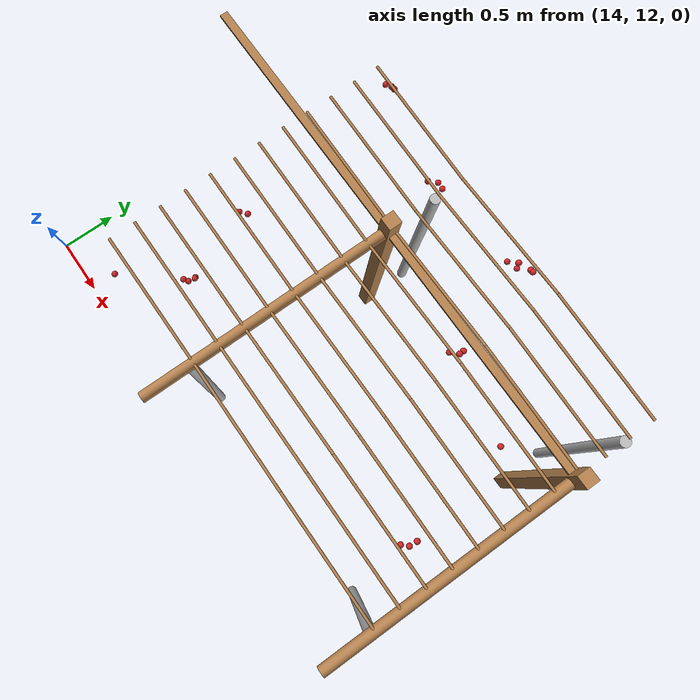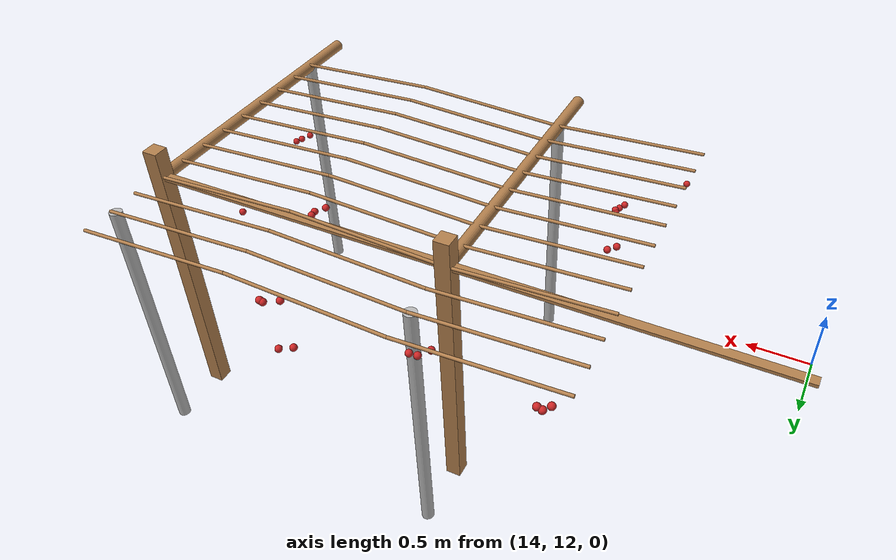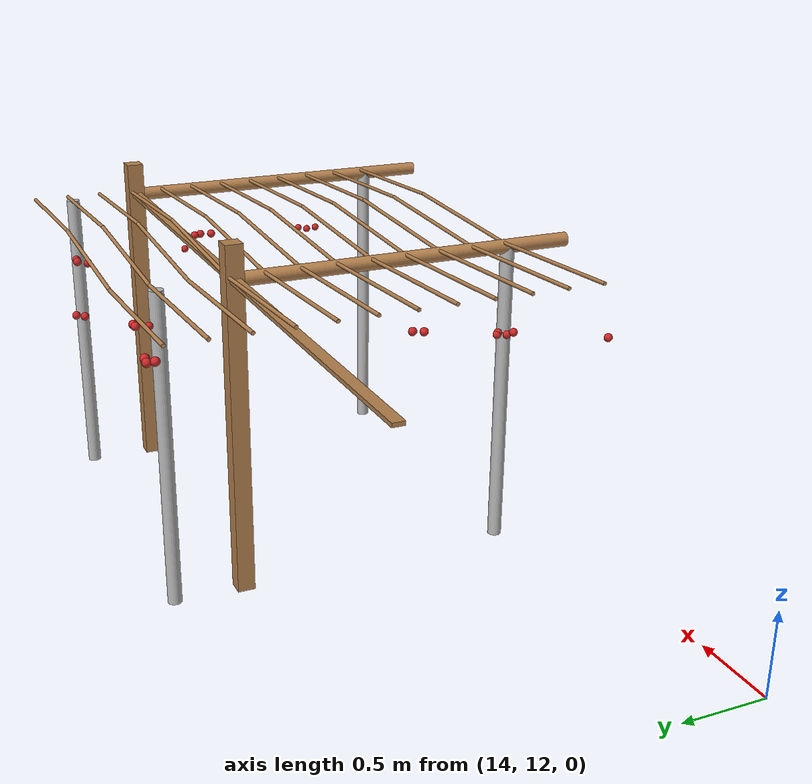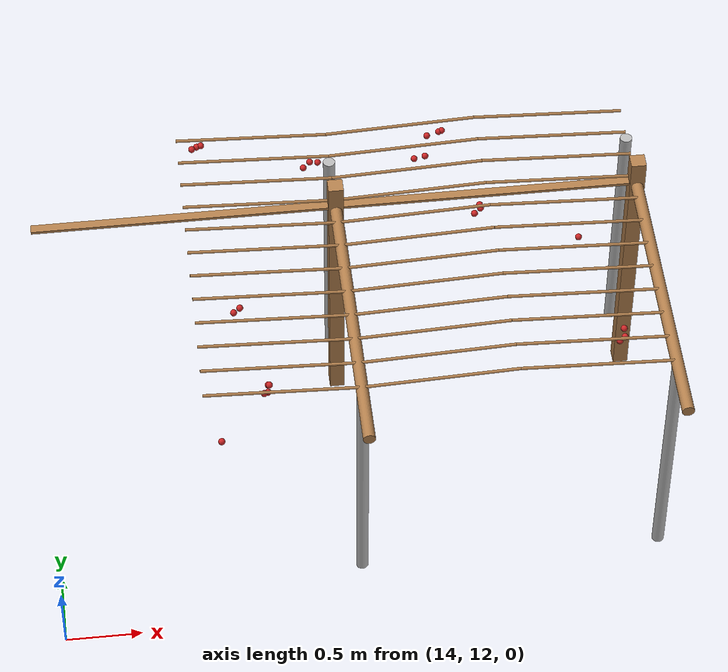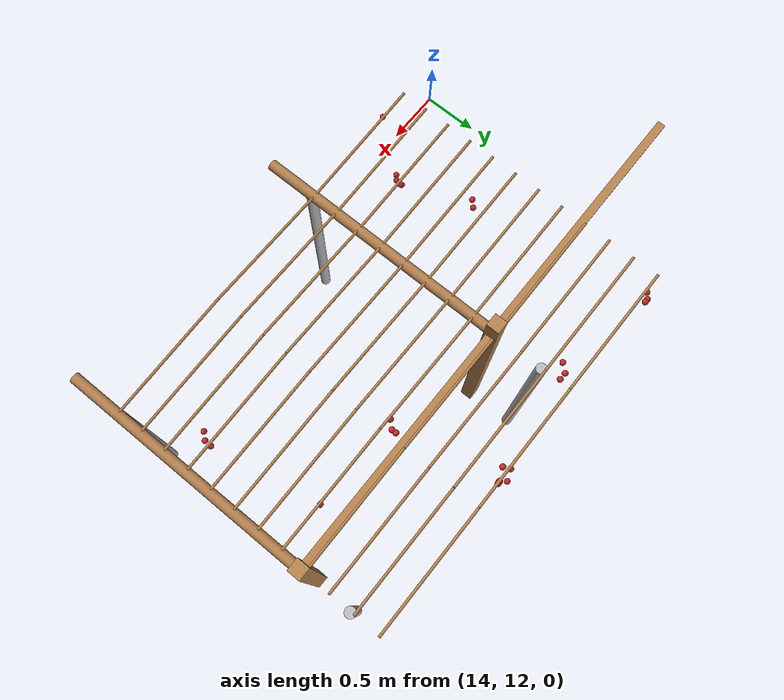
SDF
<sdf version="1.4">
 <model name="pergola">
  <include><name>post_95</name><pose>16.0 14.0 0 0 0 0</pose><uri>model://post</uri></include>
  <include><name>post_106</name><pose>18.0 14.0 0 0 0 0</pose><uri>model://post</uri></include>
  <link name="beam_84">
   <pose>15.0 14.0 1.81 0 0 0</pose>
   <collision name="collision"><geometry><box><size>2.0 0.06 0.02</size></box></geometry></collision>
   <visual name="visual">
    <geometry><box><size>2.0 0.06 0.02</size></box></geometry>
    <material><script><name>Gazebo/Wood</name></script></material>
   </visual>
   <inertial>
    <mass>5</mass>
    <inertia>
     <ixx>0.0016666666666666668</ixx>
     <ixy>0.0</ixy>
     <ixz>0.0</ixz>
     <iyy>1.6681666666666664</iyy>
     <iyz>0.0</iyz>
     <izz>1.6668333333333332</izz>
    </inertia>
   </inertial>
  </link>
  <link name="beam_95">
   <pose>17.0 14.0 1.81 0 0 0</pose>
   <collision name="collision"><geometry><box><size>2.0 0.06 0.02</size></box></geometry></collision>
   <visual name="visual">
    <geometry><box><size>2.0 0.06 0.02</size></box></geometry>
    <material><script><name>Gazebo/Wood</name></script></material>
   </visual>
   <inertial>
    <mass>5</mass>
    <inertia>
     <ixx>0.0016666666666666668</ixx>
     <ixy>0.0</ixy>
     <ixz>0.0</ixz>
     <iyy>1.6681666666666664</iyy>
     <iyz>0.0</iyz>
     <izz>1.6668333333333332</izz>
    </inertia>
   </inertial>
  </link>
  <include><name>tree_86</name><pose>16.0 12.4 0 0 0 0</pose><uri>model://tree_trunk</uri></include>
  <include><name>tree_87</name><pose>16.0 14.4 0 0 0 0</pose><uri>model://tree_trunk</uri></include>
  <include><name>tree_96</name><pose>18.0 12.4 0 0 0 0</pose><uri>model://tree_trunk</uri></include>
  <include><name>tree_97</name><pose>18.0 14.4 0 0 0 0</pose><uri>model://tree_trunk</uri></include>
  <link name="baseBranch_86">
   <pose>16.0 13.0 1.8 1.5707963267948966 0 0</pose>
   <collision name="collision">
    <geometry><cylinder><radius>0.04</radius><length>1.94</length></cylinder></geometry>
   </collision>
   <visual name="visual">
    <geometry><cylinder><radius>0.04</radius><length>1.94</length></cylinder></geometry>
    <material><script><name>Gazebo/WoodFloor</name></script></material>
   </visual>
   <inertial>
    <mass>10</mass>
    <inertia>
     <ixx>3.140333333333333</ixx>
     <ixy>0.0</ixy>
     <ixz>0.0</ixz>
     <iyy>3.140333333333333</iyy>
     <iyz>0.0</iyz>
     <izz>0.008</izz>
    </inertia>
   </inertial>
  </link>
  <link name="baseBranch_96">
   <pose>18.0 13.0 1.8 1.5707963267948966 0 0</pose>
   <collision name="collision">
    <geometry><cylinder><radius>0.04</radius><length>1.94</length></cylinder></geometry>
   </collision>
   <visual name="visual">
    <geometry><cylinder><radius>0.04</radius><length>1.94</length></cylinder></geometry>
    <material><script><name>Gazebo/WoodFloor</name></script></material>
   </visual>
   <inertial>
    <mass>10</mass>
    <inertia>
     <ixx>3.140333333333333</ixx>
     <ixy>0.0</ixy>
     <ixz>0.0</ixz>
     <iyy>3.140333333333333</iyy>
     <iyz>0.0</iyz>
     <izz>0.008</izz>
    </inertia>
   </inertial>
  </link>
  <link name="vine_1525">
   <pose>15.5 12.43 1.85 0 -1.5208379310729538 0</pose>
   <collision name="collision">
    <geometry><cylinder><radius>0.01</radius><length>1.0012492197250393</length></cylinder></geometry>
   </collision>
   <visual name="visual">
    <geometry><cylinder><radius>0.01</radius><length>1.0012492197250393</length></cylinder></geometry>
    <material><script><name>Gazebo/WoodFloor</name></script></material>
   </visual>
   <inertial>
    <mass>5</mass>
    <inertia>
     <ixx>0.41783333333333345</ixx>
     <ixy>0.0</ixy>
     <ixz>0.0</ixz>
     <iyy>0.41783333333333345</iyy>
     <iyz>0.0</iyz>
     <izz>0.00025</izz>
    </inertia>
   </inertial>
  </link>
  <link name="vine_1527">
   <pose>15.5 12.63 1.85 0 -1.5208379310729538 0</pose>
   <collision name="collision">
    <geometry><cylinder><radius>0.01</radius><length>1.0012492197250393</length></cylinder></geometry>
   </collision>
   <visual name="visual">
    <geometry><cylinder><radius>0.01</radius><length>1.0012492197250393</length></cylinder></geometry>
    <material><script><name>Gazebo/WoodFloor</name></script></material>
   </visual>
   <inertial>
    <mass>5</mass>
    <inertia>
     <ixx>0.41783333333333345</ixx>
     <ixy>0.0</ixy>
     <ixz>0.0</ixz>
     <iyy>0.41783333333333345</iyy>
     <iyz>0.0</iyz>
     <izz>0.00025</izz>
    </inertia>
   </inertial>
  </link>
  <link name="vine_1529">
   <pose>15.5 12.83 1.85 0 -1.5208379310729538 0</pose>
   <collision name="collision">
    <geometry><cylinder><radius>0.01</radius><length>1.0012492197250393</length></cylinder></geometry>
   </collision>
   <visual name="visual">
    <geometry><cylinder><radius>0.01</radius><length>1.0012492197250393</length></cylinder></geometry>
    <material><script><name>Gazebo/WoodFloor</name></script></material>
   </visual>
   <inertial>
    <mass>5</mass>
    <inertia>
     <ixx>0.41783333333333345</ixx>
     <ixy>0.0</ixy>
     <ixz>0.0</ixz>
     <iyy>0.41783333333333345</iyy>
     <iyz>0.0</iyz>
     <izz>0.00025</izz>
    </inertia>
   </inertial>
  </link>
  <link name="vine_1531">
   <pose>15.5 13.03 1.85 0 -1.5208379310729538 0</pose>
   <collision name="collision">
    <geometry><cylinder><radius>0.01</radius><length>1.0012492197250393</length></cylinder></geometry>
   </collision>
   <visual name="visual">
    <geometry><cylinder><radius>0.01</radius><length>1.0012492197250393</length></cylinder></geometry>
    <material><script><name>Gazebo/WoodFloor</name></script></material>
   </visual>
   <inertial>
    <mass>5</mass>
    <inertia>
     <ixx>0.41783333333333345</ixx>
     <ixy>0.0</ixy>
     <ixz>0.0</ixz>
     <iyy>0.41783333333333345</iyy>
     <iyz>0.0</iyz>
     <izz>0.00025</izz>
    </inertia>
   </inertial>
  </link>
  <link name="vine_1533">
   <pose>15.5 13.23 1.85 0 -1.5208379310729538 0</pose>
   <collision name="collision">
    <geometry><cylinder><radius>0.01</radius><length>1.0012492197250393</length></cylinder></geometry>
   </collision>
   <visual name="visual">
    <geometry><cylinder><radius>0.01</radius><length>1.0012492197250393</length></cylinder></geometry>
    <material><script><name>Gazebo/WoodFloor</name></script></material>
   </visual>
   <inertial>
    <mass>5</mass>
    <inertia>
     <ixx>0.41783333333333345</ixx>
     <ixy>0.0</ixy>
     <ixz>0.0</ixz>
     <iyy>0.41783333333333345</iyy>
     <iyz>0.0</iyz>
     <izz>0.00025</izz>
    </inertia>
   </inertial>
  </link>
  <link name="vine_1535">
   <pose>15.5 13.43 1.85 0 -1.5208379310729538 0</pose>
   <collision name="collision">
    <geometry><cylinder><radius>0.01</radius><length>1.0012492197250393</length></cylinder></geometry>
   </collision>
   <visual name="visual">
    <geometry><cylinder><radius>0.01</radius><length>1.0012492197250393</length></cylinder></geometry>
    <material><script><name>Gazebo/WoodFloor</name></script></material>
   </visual>
   <inertial>
    <mass>5</mass>
    <inertia>
     <ixx>0.41783333333333345</ixx>
     <ixy>0.0</ixy>
     <ixz>0.0</ixz>
     <iyy>0.41783333333333345</iyy>
     <iyz>0.0</iyz>
     <izz>0.00025</izz>
    </inertia>
   </inertial>
  </link>
  <link name="vine_1537">
   <pose>15.5 13.63 1.85 0 -1.5208379310729538 0</pose>
   <collision name="collision">
    <geometry><cylinder><radius>0.01</radius><length>1.0012492197250393</length></cylinder></geometry>
   </collision>
   <visual name="visual">
    <geometry><cylinder><radius>0.01</radius><length>1.0012492197250393</length></cylinder></geometry>
    <material><script><name>Gazebo/WoodFloor</name></script></material>
   </visual>
   <inertial>
    <mass>5</mass>
    <inertia>
     <ixx>0.41783333333333345</ixx>
     <ixy>0.0</ixy>
     <ixz>0.0</ixz>
     <iyy>0.41783333333333345</iyy>
     <iyz>0.0</iyz>
     <izz>0.00025</izz>
    </inertia>
   </inertial>
  </link>
  <link name="vine_1539">
   <pose>15.5 13.83 1.85 0 -1.5208379310729538 0</pose>
   <collision name="collision">
    <geometry><cylinder><radius>0.01</radius><length>1.0012492197250393</length></cylinder></geometry>
   </collision>
   <visual name="visual">
    <geometry><cylinder><radius>0.01</radius><length>1.0012492197250393</length></cylinder></geometry>
    <material><script><name>Gazebo/WoodFloor</name></script></material>
   </visual>
   <inertial>
    <mass>5</mass>
    <inertia>
     <ixx>0.41783333333333345</ixx>
     <ixy>0.0</ixy>
     <ixz>0.0</ixz>
     <iyy>0.41783333333333345</iyy>
     <iyz>0.0</iyz>
     <izz>0.00025</izz>
    </inertia>
   </inertial>
  </link>
  <link name="vine_1541">
   <pose>15.5 14.03 1.85 0 -1.5208379310729538 0</pose>
   <collision name="collision">
    <geometry><cylinder><radius>0.01</radius><length>1.0012492197250393</length></cylinder></geometry>
   </collision>
   <visual name="visual">
    <geometry><cylinder><radius>0.01</radius><length>1.0012492197250393</length></cylinder></geometry>
    <material><script><name>Gazebo/WoodFloor</name></script></material>
   </visual>
   <inertial>
    <mass>5</mass>
    <inertia>
     <ixx>0.41783333333333345</ixx>
     <ixy>0.0</ixy>
     <ixz>0.0</ixz>
     <iyy>0.41783333333333345</iyy>
     <iyz>0.0</iyz>
     <izz>0.00025</izz>
    </inertia>
   </inertial>
  </link>
  <link name="vine_1543">
   <pose>15.5 14.23 1.85 0 -1.5208379310729538 0</pose>
   <collision name="collision">
    <geometry><cylinder><radius>0.01</radius><length>1.0012492197250393</length></cylinder></geometry>
   </collision>
   <visual name="visual">
    <geometry><cylinder><radius>0.01</radius><length>1.0012492197250393</length></cylinder></geometry>
    <material><script><name>Gazebo/WoodFloor</name></script></material>
   </visual>
   <inertial>
    <mass>5</mass>
    <inertia>
     <ixx>0.41783333333333345</ixx>
     <ixy>0.0</ixy>
     <ixz>0.0</ixz>
     <iyy>0.41783333333333345</iyy>
     <iyz>0.0</iyz>
     <izz>0.00025</izz>
    </inertia>
   </inertial>
  </link>
  <link name="vine_1545">
   <pose>15.5 14.43 1.85 0 -1.5208379310729538 0</pose>
   <collision name="collision">
    <geometry><cylinder><radius>0.01</radius><length>1.0012492197250393</length></cylinder></geometry>
   </collision>
   <visual name="visual">
    <geometry><cylinder><radius>0.01</radius><length>1.0012492197250393</length></cylinder></geometry>
    <material><script><name>Gazebo/WoodFloor</name></script></material>
   </visual>
   <inertial>
    <mass>5</mass>
    <inertia>
     <ixx>0.41783333333333345</ixx>
     <ixy>0.0</ixy>
     <ixz>0.0</ixz>
     <iyy>0.41783333333333345</iyy>
     <iyz>0.0</iyz>
     <izz>0.00025</izz>
    </inertia>
   </inertial>
  </link>
  <link name="vine_1547">
   <pose>15.5 14.63 1.85 0 -1.5208379310729538 0</pose>
   <collision name="collision">
    <geometry><cylinder><radius>0.01</radius><length>1.0012492197250393</length></cylinder></geometry>
   </collision>
   <visual name="visual">
    <geometry><cylinder><radius>0.01</radius><length>1.0012492197250393</length></cylinder></geometry>
    <material><script><name>Gazebo/WoodFloor</name></script></material>
   </visual>
   <inertial>
    <mass>5</mass>
    <inertia>
     <ixx>0.41783333333333345</ixx>
     <ixy>0.0</ixy>
     <ixz>0.0</ixz>
     <iyy>0.41783333333333345</iyy>
     <iyz>0.0</iyz>
     <izz>0.00025</izz>
    </inertia>
   </inertial>
  </link>
  <link name="vine_1724">
   <pose>16.5 12.43 1.85 0 1.5208379310729538 0</pose>
   <collision name="collision">
    <geometry><cylinder><radius>0.01</radius><length>1.0012492197250393</length></cylinder></geometry>
   </collision>
   <visual name="visual">
    <geometry><cylinder><radius>0.01</radius><length>1.0012492197250393</length></cylinder></geometry>
    <material><script><name>Gazebo/WoodFloor</name></script></material>
   </visual>
   <inertial>
    <mass>5</mass>
    <inertia>
     <ixx>0.41783333333333345</ixx>
     <ixy>0.0</ixy>
     <ixz>0.0</ixz>
     <iyy>0.41783333333333345</iyy>
     <iyz>0.0</iyz>
     <izz>0.00025</izz>
    </inertia>
   </inertial>
  </link>
  <link name="vine_1725">
   <pose>17.5 12.43 1.85 0 -1.5208379310729538 0</pose>
   <collision name="collision">
    <geometry><cylinder><radius>0.01</radius><length>1.0012492197250393</length></cylinder></geometry>
   </collision>
   <visual name="visual">
    <geometry><cylinder><radius>0.01</radius><length>1.0012492197250393</length></cylinder></geometry>
    <material><script><name>Gazebo/WoodFloor</name></script></material>
   </visual>
   <inertial>
    <mass>5</mass>
    <inertia>
     <ixx>0.41783333333333345</ixx>
     <ixy>0.0</ixy>
     <ixz>0.0</ixz>
     <iyy>0.41783333333333345</iyy>
     <iyz>0.0</iyz>
     <izz>0.00025</izz>
    </inertia>
   </inertial>
  </link>
  <link name="vine_1726">
   <pose>16.5 12.63 1.85 0 1.5208379310729538 0</pose>
   <collision name="collision">
    <geometry><cylinder><radius>0.01</radius><length>1.0012492197250393</length></cylinder></geometry>
   </collision>
   <visual name="visual">
    <geometry><cylinder><radius>0.01</radius><length>1.0012492197250393</length></cylinder></geometry>
    <material><script><name>Gazebo/WoodFloor</name></script></material>
   </visual>
   <inertial>
    <mass>5</mass>
    <inertia>
     <ixx>0.41783333333333345</ixx>
     <ixy>0.0</ixy>
     <ixz>0.0</ixz>
     <iyy>0.41783333333333345</iyy>
     <iyz>0.0</iyz>
     <izz>0.00025</izz>
    </inertia>
   </inertial>
  </link>
  <link name="vine_1727">
   <pose>17.5 12.63 1.85 0 -1.5208379310729538 0</pose>
   <collision name="collision">
    <geometry><cylinder><radius>0.01</radius><length>1.0012492197250393</length></cylinder></geometry>
   </collision>
   <visual name="visual">
    <geometry><cylinder><radius>0.01</radius><length>1.0012492197250393</length></cylinder></geometry>
    <material><script><name>Gazebo/WoodFloor</name></script></material>
   </visual>
   <inertial>
    <mass>5</mass>
    <inertia>
     <ixx>0.41783333333333345</ixx>
     <ixy>0.0</ixy>
     <ixz>0.0</ixz>
     <iyy>0.41783333333333345</iyy>
     <iyz>0.0</iyz>
     <izz>0.00025</izz>
    </inertia>
   </inertial>
  </link>
  <link name="vine_1728">
   <pose>16.5 12.83 1.85 0 1.5208379310729538 0</pose>
   <collision name="collision">
    <geometry><cylinder><radius>0.01</radius><length>1.0012492197250393</length></cylinder></geometry>
   </collision>
   <visual name="visual">
    <geometry><cylinder><radius>0.01</radius><length>1.0012492197250393</length></cylinder></geometry>
    <material><script><name>Gazebo/WoodFloor</name></script></material>
   </visual>
   <inertial>
    <mass>5</mass>
    <inertia>
     <ixx>0.41783333333333345</ixx>
     <ixy>0.0</ixy>
     <ixz>0.0</ixz>
     <iyy>0.41783333333333345</iyy>
     <iyz>0.0</iyz>
     <izz>0.00025</izz>
    </inertia>
   </inertial>
  </link>
  <link name="vine_1729">
   <pose>17.5 12.83 1.85 0 -1.5208379310729538 0</pose>
   <collision name="collision">
    <geometry><cylinder><radius>0.01</radius><length>1.0012492197250393</length></cylinder></geometry>
   </collision>
   <visual name="visual">
    <geometry><cylinder><radius>0.01</radius><length>1.0012492197250393</length></cylinder></geometry>
    <material><script><name>Gazebo/WoodFloor</name></script></material>
   </visual>
   <inertial>
    <mass>5</mass>
    <inertia>
     <ixx>0.41783333333333345</ixx>
     <ixy>0.0</ixy>
     <ixz>0.0</ixz>
     <iyy>0.41783333333333345</iyy>
     <iyz>0.0</iyz>
     <izz>0.00025</izz>
    </inertia>
   </inertial>
  </link>
  <link name="vine_1730">
   <pose>16.5 13.03 1.85 0 1.5208379310729538 0</pose>
   <collision name="collision">
    <geometry><cylinder><radius>0.01</radius><length>1.0012492197250393</length></cylinder></geometry>
   </collision>
   <visual name="visual">
    <geometry><cylinder><radius>0.01</radius><length>1.0012492197250393</length></cylinder></geometry>
    <material><script><name>Gazebo/WoodFloor</name></script></material>
   </visual>
   <inertial>
    <mass>5</mass>
    <inertia>
     <ixx>0.41783333333333345</ixx>
     <ixy>0.0</ixy>
     <ixz>0.0</ixz>
     <iyy>0.41783333333333345</iyy>
     <iyz>0.0</iyz>
     <izz>0.00025</izz>
    </inertia>
   </inertial>
  </link>
  <link name="vine_1731">
   <pose>17.5 13.03 1.85 0 -1.5208379310729538 0</pose>
   <collision name="collision">
    <geometry><cylinder><radius>0.01</radius><length>1.0012492197250393</length></cylinder></geometry>
   </collision>
   <visual name="visual">
    <geometry><cylinder><radius>0.01</radius><length>1.0012492197250393</length></cylinder></geometry>
    <material><script><name>Gazebo/WoodFloor</name></script></material>
   </visual>
   <inertial>
    <mass>5</mass>
    <inertia>
     <ixx>0.41783333333333345</ixx>
     <ixy>0.0</ixy>
     <ixz>0.0</ixz>
     <iyy>0.41783333333333345</iyy>
     <iyz>0.0</iyz>
     <izz>0.00025</izz>
    </inertia>
   </inertial>
  </link>
  <link name="vine_1732">
   <pose>16.5 13.23 1.85 0 1.5208379310729538 0</pose>
   <collision name="collision">
    <geometry><cylinder><radius>0.01</radius><length>1.0012492197250393</length></cylinder></geometry>
   </collision>
   <visual name="visual">
    <geometry><cylinder><radius>0.01</radius><length>1.0012492197250393</length></cylinder></geometry>
    <material><script><name>Gazebo/WoodFloor</name></script></material>
   </visual>
   <inertial>
    <mass>5</mass>
    <inertia>
     <ixx>0.41783333333333345</ixx>
     <ixy>0.0</ixy>
     <ixz>0.0</ixz>
     <iyy>0.41783333333333345</iyy>
     <iyz>0.0</iyz>
     <izz>0.00025</izz>
    </inertia>
   </inertial>
  </link>
  <link name="vine_1733">
   <pose>17.5 13.23 1.85 0 -1.5208379310729538 0</pose>
   <collision name="collision">
    <geometry><cylinder><radius>0.01</radius><length>1.0012492197250393</length></cylinder></geometry>
   </collision>
   <visual name="visual">
    <geometry><cylinder><radius>0.01</radius><length>1.0012492197250393</length></cylinder></geometry>
    <material><script><name>Gazebo/WoodFloor</name></script></material>
   </visual>
   <inertial>
    <mass>5</mass>
    <inertia>
     <ixx>0.41783333333333345</ixx>
     <ixy>0.0</ixy>
     <ixz>0.0</ixz>
     <iyy>0.41783333333333345</iyy>
     <iyz>0.0</iyz>
     <izz>0.00025</izz>
    </inertia>
   </inertial>
  </link>
  <link name="vine_1734">
   <pose>16.5 13.43 1.85 0 1.5208379310729538 0</pose>
   <collision name="collision">
    <geometry><cylinder><radius>0.01</radius><length>1.0012492197250393</length></cylinder></geometry>
   </collision>
   <visual name="visual">
    <geometry><cylinder><radius>0.01</radius><length>1.0012492197250393</length></cylinder></geometry>
    <material><script><name>Gazebo/WoodFloor</name></script></material>
   </visual>
   <inertial>
    <mass>5</mass>
    <inertia>
     <ixx>0.41783333333333345</ixx>
     <ixy>0.0</ixy>
     <ixz>0.0</ixz>
     <iyy>0.41783333333333345</iyy>
     <iyz>0.0</iyz>
     <izz>0.00025</izz>
    </inertia>
   </inertial>
  </link>
  <link name="vine_1735">
   <pose>17.5 13.43 1.85 0 -1.5208379310729538 0</pose>
   <collision name="collision">
    <geometry><cylinder><radius>0.01</radius><length>1.0012492197250393</length></cylinder></geometry>
   </collision>
   <visual name="visual">
    <geometry><cylinder><radius>0.01</radius><length>1.0012492197250393</length></cylinder></geometry>
    <material><script><name>Gazebo/WoodFloor</name></script></material>
   </visual>
   <inertial>
    <mass>5</mass>
    <inertia>
     <ixx>0.41783333333333345</ixx>
     <ixy>0.0</ixy>
     <ixz>0.0</ixz>
     <iyy>0.41783333333333345</iyy>
     <iyz>0.0</iyz>
     <izz>0.00025</izz>
    </inertia>
   </inertial>
  </link>
  <link name="vine_1736">
   <pose>16.5 13.63 1.85 0 1.5208379310729538 0</pose>
   <collision name="collision">
    <geometry><cylinder><radius>0.01</radius><length>1.0012492197250393</length></cylinder></geometry>
   </collision>
   <visual name="visual">
    <geometry><cylinder><radius>0.01</radius><length>1.0012492197250393</length></cylinder></geometry>
    <material><script><name>Gazebo/WoodFloor</name></script></material>
   </visual>
   <inertial>
    <mass>5</mass>
    <inertia>
     <ixx>0.41783333333333345</ixx>
     <ixy>0.0</ixy>
     <ixz>0.0</ixz>
     <iyy>0.41783333333333345</iyy>
     <iyz>0.0</iyz>
     <izz>0.00025</izz>
    </inertia>
   </inertial>
  </link>
  <link name="vine_1737">
   <pose>17.5 13.63 1.85 0 -1.5208379310729538 0</pose>
   <collision name="collision">
    <geometry><cylinder><radius>0.01</radius><length>1.0012492197250393</length></cylinder></geometry>
   </collision>
   <visual name="visual">
    <geometry><cylinder><radius>0.01</radius><length>1.0012492197250393</length></cylinder></geometry>
    <material><script><name>Gazebo/WoodFloor</name></script></material>
   </visual>
   <inertial>
    <mass>5</mass>
    <inertia>
     <ixx>0.41783333333333345</ixx>
     <ixy>0.0</ixy>
     <ixz>0.0</ixz>
     <iyy>0.41783333333333345</iyy>
     <iyz>0.0</iyz>
     <izz>0.00025</izz>
    </inertia>
   </inertial>
  </link>
  <link name="vine_1738">
   <pose>16.5 13.83 1.85 0 1.5208379310729538 0</pose>
   <collision name="collision">
    <geometry><cylinder><radius>0.01</radius><length>1.0012492197250393</length></cylinder></geometry>
   </collision>
   <visual name="visual">
    <geometry><cylinder><radius>0.01</radius><length>1.0012492197250393</length></cylinder></geometry>
    <material><script><name>Gazebo/WoodFloor</name></script></material>
   </visual>
   <inertial>
    <mass>5</mass>
    <inertia>
     <ixx>0.41783333333333345</ixx>
     <ixy>0.0</ixy>
     <ixz>0.0</ixz>
     <iyy>0.41783333333333345</iyy>
     <iyz>0.0</iyz>
     <izz>0.00025</izz>
    </inertia>
   </inertial>
  </link>
  <link name="vine_1739">
   <pose>17.5 13.83 1.85 0 -1.5208379310729538 0</pose>
   <collision name="collision">
    <geometry><cylinder><radius>0.01</radius><length>1.0012492197250393</length></cylinder></geometry>
   </collision>
   <visual name="visual">
    <geometry><cylinder><radius>0.01</radius><length>1.0012492197250393</length></cylinder></geometry>
    <material><script><name>Gazebo/WoodFloor</name></script></material>
   </visual>
   <inertial>
    <mass>5</mass>
    <inertia>
     <ixx>0.41783333333333345</ixx>
     <ixy>0.0</ixy>
     <ixz>0.0</ixz>
     <iyy>0.41783333333333345</iyy>
     <iyz>0.0</iyz>
     <izz>0.00025</izz>
    </inertia>
   </inertial>
  </link>
  <link name="vine_1740">
   <pose>16.5 14.03 1.85 0 1.5208379310729538 0</pose>
   <collision name="collision">
    <geometry><cylinder><radius>0.01</radius><length>1.0012492197250393</length></cylinder></geometry>
   </collision>
   <visual name="visual">
    <geometry><cylinder><radius>0.01</radius><length>1.0012492197250393</length></cylinder></geometry>
    <material><script><name>Gazebo/WoodFloor</name></script></material>
   </visual>
   <inertial>
    <mass>5</mass>
    <inertia>
     <ixx>0.41783333333333345</ixx>
     <ixy>0.0</ixy>
     <ixz>0.0</ixz>
     <iyy>0.41783333333333345</iyy>
     <iyz>0.0</iyz>
     <izz>0.00025</izz>
    </inertia>
   </inertial>
  </link>
  <link name="vine_1741">
   <pose>17.5 14.03 1.85 0 -1.5208379310729538 0</pose>
   <collision name="collision">
    <geometry><cylinder><radius>0.01</radius><length>1.0012492197250393</length></cylinder></geometry>
   </collision>
   <visual name="visual">
    <geometry><cylinder><radius>0.01</radius><length>1.0012492197250393</length></cylinder></geometry>
    <material><script><name>Gazebo/WoodFloor</name></script></material>
   </visual>
   <inertial>
    <mass>5</mass>
    <inertia>
     <ixx>0.41783333333333345</ixx>
     <ixy>0.0</ixy>
     <ixz>0.0</ixz>
     <iyy>0.41783333333333345</iyy>
     <iyz>0.0</iyz>
     <izz>0.00025</izz>
    </inertia>
   </inertial>
  </link>
  <link name="vine_1742">
   <pose>16.5 14.23 1.85 0 1.5208379310729538 0</pose>
   <collision name="collision">
    <geometry><cylinder><radius>0.01</radius><length>1.0012492197250393</length></cylinder></geometry>
   </collision>
   <visual name="visual">
    <geometry><cylinder><radius>0.01</radius><length>1.0012492197250393</length></cylinder></geometry>
    <material><script><name>Gazebo/WoodFloor</name></script></material>
   </visual>
   <inertial>
    <mass>5</mass>
    <inertia>
     <ixx>0.41783333333333345</ixx>
     <ixy>0.0</ixy>
     <ixz>0.0</ixz>
     <iyy>0.41783333333333345</iyy>
     <iyz>0.0</iyz>
     <izz>0.00025</izz>
    </inertia>
   </inertial>
  </link>
  <link name="vine_1743">
   <pose>17.5 14.23 1.85 0 -1.5208379310729538 0</pose>
   <collision name="collision">
    <geometry><cylinder><radius>0.01</radius><length>1.0012492197250393</length></cylinder></geometry>
   </collision>
   <visual name="visual">
    <geometry><cylinder><radius>0.01</radius><length>1.0012492197250393</length></cylinder></geometry>
    <material><script><name>Gazebo/WoodFloor</name></script></material>
   </visual>
   <inertial>
    <mass>5</mass>
    <inertia>
     <ixx>0.41783333333333345</ixx>
     <ixy>0.0</ixy>
     <ixz>0.0</ixz>
     <iyy>0.41783333333333345</iyy>
     <iyz>0.0</iyz>
     <izz>0.00025</izz>
    </inertia>
   </inertial>
  </link>
  <link name="vine_1744">
   <pose>16.5 14.43 1.85 0 1.5208379310729538 0</pose>
   <collision name="collision">
    <geometry><cylinder><radius>0.01</radius><length>1.0012492197250393</length></cylinder></geometry>
   </collision>
   <visual name="visual">
    <geometry><cylinder><radius>0.01</radius><length>1.0012492197250393</length></cylinder></geometry>
    <material><script><name>Gazebo/WoodFloor</name></script></material>
   </visual>
   <inertial>
    <mass>5</mass>
    <inertia>
     <ixx>0.41783333333333345</ixx>
     <ixy>0.0</ixy>
     <ixz>0.0</ixz>
     <iyy>0.41783333333333345</iyy>
     <iyz>0.0</iyz>
     <izz>0.00025</izz>
    </inertia>
   </inertial>
  </link>
  <link name="vine_1745">
   <pose>17.5 14.43 1.85 0 -1.5208379310729538 0</pose>
   <collision name="collision">
    <geometry><cylinder><radius>0.01</radius><length>1.0012492197250393</length></cylinder></geometry>
   </collision>
   <visual name="visual">
    <geometry><cylinder><radius>0.01</radius><length>1.0012492197250393</length></cylinder></geometry>
    <material><script><name>Gazebo/WoodFloor</name></script></material>
   </visual>
   <inertial>
    <mass>5</mass>
    <inertia>
     <ixx>0.41783333333333345</ixx>
     <ixy>0.0</ixy>
     <ixz>0.0</ixz>
     <iyy>0.41783333333333345</iyy>
     <iyz>0.0</iyz>
     <izz>0.00025</izz>
    </inertia>
   </inertial>
  </link>
  <link name="vine_1746">
   <pose>16.5 14.63 1.85 0 1.5208379310729538 0</pose>
   <collision name="collision">
    <geometry><cylinder><radius>0.01</radius><length>1.0012492197250393</length></cylinder></geometry>
   </collision>
   <visual name="visual">
    <geometry><cylinder><radius>0.01</radius><length>1.0012492197250393</length></cylinder></geometry>
    <material><script><name>Gazebo/WoodFloor</name></script></material>
   </visual>
   <inertial>
    <mass>5</mass>
    <inertia>
     <ixx>0.41783333333333345</ixx>
     <ixy>0.0</ixy>
     <ixz>0.0</ixz>
     <iyy>0.41783333333333345</iyy>
     <iyz>0.0</iyz>
     <izz>0.00025</izz>
    </inertia>
   </inertial>
  </link>
  <link name="vine_1747">
   <pose>17.5 14.63 1.85 0 -1.5208379310729538 0</pose>
   <collision name="collision">
    <geometry><cylinder><radius>0.01</radius><length>1.0012492197250393</length></cylinder></geometry>
   </collision>
   <visual name="visual">
    <geometry><cylinder><radius>0.01</radius><length>1.0012492197250393</length></cylinder></geometry>
    <material><script><name>Gazebo/WoodFloor</name></script></material>
   </visual>
   <inertial>
    <mass>5</mass>
    <inertia>
     <ixx>0.41783333333333345</ixx>
     <ixy>0.0</ixy>
     <ixz>0.0</ixz>
     <iyy>0.41783333333333345</iyy>
     <iyz>0.0</iyz>
     <izz>0.00025</izz>
    </inertia>
   </inertial>
  </link>
  <link name="fruit_39">
   <pose>15.835201920038733 14.485727230823201 1.6712835379454336 0 0 0</pose>
   <collision name="fruit_collision_39"><geometry><sphere><radius>0.022</radius></sphere></geometry></collision>
   <visual name="visual">
    <geometry><sphere><radius>0.022</radius></sphere></geometry>
    <material><script><name>Gazebo/Red</name></script></material>
   </visual>
   <inertial>
    <mass>0.05</mass>
    <inertia>
     <ixx>9.679999999999999e-06</ixx>
     <ixy>0.0</ixy>
     <ixz>0.0</ixz>
     <iyy>9.679999999999999e-06</iyy>
     <iyz>0.0</iyz>
     <izz>9.679999999999999e-06</izz>
    </inertia>
   </inertial>
   <sensor name="fruit_contact_39" type="contact">
    <contact><collision>fruit_collision_39</collision></contact>
   </sensor>
  </link>
  <link name="fruit_73">
   <pose>17.59991374473471 13.800316120876262 1.520310519415282 0 0 0</pose>
   <collision name="fruit_collision_73"><geometry><sphere><radius>0.022</radius></sphere></geometry></collision>
   <visual name="visual">
    <geometry><sphere><radius>0.022</radius></sphere></geometry>
    <material><script><name>Gazebo/Red</name></script></material>
   </visual>
   <inertial>
    <mass>0.05</mass>
    <inertia>
     <ixx>9.679999999999999e-06</ixx>
     <ixy>0.0</ixy>
     <ixz>0.0</ixz>
     <iyy>9.679999999999999e-06</iyy>
     <iyz>0.0</iyz>
     <izz>9.679999999999999e-06</izz>
    </inertia>
   </inertial>
   <sensor name="fruit_contact_73" type="contact">
    <contact><collision>fruit_collision_73</collision></contact>
   </sensor>
  </link>
  <link name="fruit_149">
   <pose>16.605383909169692 14.647194924043285 1.5007961375646577 0 0 0</pose>
   <collision name="fruit_collision_149"><geometry><sphere><radius>0.022</radius></sphere></geometry></collision>
   <visual name="visual">
    <geometry><sphere><radius>0.022</radius></sphere></geometry>
    <material><script><name>Gazebo/Red</name></script></material>
   </visual>
   <inertial>
    <mass>0.05</mass>
    <inertia>
     <ixx>9.679999999999999e-06</ixx>
     <ixy>0.0</ixy>
     <ixz>0.0</ixz>
     <iyy>9.679999999999999e-06</iyy>
     <iyz>0.0</iyz>
     <izz>9.679999999999999e-06</izz>
    </inertia>
   </inertial>
   <sensor name="fruit_contact_149" type="contact">
    <contact><collision>fruit_collision_149</collision></contact>
   </sensor>
  </link>
  <link name="fruit_153">
   <pose>15.261037276576587 13.271995017536495 1.6606356183933284 0 0 0</pose>
   <collision name="fruit_collision_153"><geometry><sphere><radius>0.022</radius></sphere></geometry></collision>
   <visual name="visual">
    <geometry><sphere><radius>0.022</radius></sphere></geometry>
    <material><script><name>Gazebo/Red</name></script></material>
   </visual>
   <inertial>
    <mass>0.05</mass>
    <inertia>
     <ixx>9.679999999999999e-06</ixx>
     <ixy>0.0</ixy>
     <ixz>0.0</ixz>
     <iyy>9.679999999999999e-06</iyy>
     <iyz>0.0</iyz>
     <izz>9.679999999999999e-06</izz>
    </inertia>
   </inertial>
   <sensor name="fruit_contact_153" type="contact">
    <contact><collision>fruit_collision_153</collision></contact>
   </sensor>
  </link>
  <link name="fruit_247">
   <pose>16.899667387512423 13.833455052442723 1.7995583152253098 0 0 0</pose>
   <collision name="fruit_collision_247"><geometry><sphere><radius>0.022</radius></sphere></geometry></collision>
   <visual name="visual">
    <geometry><sphere><radius>0.022</radius></sphere></geometry>
    <material><script><name>Gazebo/Red</name></script></material>
   </visual>
   <inertial>
    <mass>0.05</mass>
    <inertia>
     <ixx>9.679999999999999e-06</ixx>
     <ixy>0.0</ixy>
     <ixz>0.0</ixz>
     <iyy>9.679999999999999e-06</iyy>
     <iyz>0.0</iyz>
     <izz>9.679999999999999e-06</izz>
    </inertia>
   </inertial>
   <sensor name="fruit_contact_247" type="contact">
    <contact><collision>fruit_collision_247</collision></contact>
   </sensor>
  </link>
  <link name="fruit_291">
   <pose>15.102615316093651 14.643575907819308 1.7701389726514203 0 0 0</pose>
   <collision name="fruit_collision_291"><geometry><sphere><radius>0.022</radius></sphere></geometry></collision>
   <visual name="visual">
    <geometry><sphere><radius>0.022</radius></sphere></geometry>
    <material><script><name>Gazebo/Red</name></script></material>
   </visual>
   <inertial>
    <mass>0.05</mass>
    <inertia>
     <ixx>9.679999999999999e-06</ixx>
     <ixy>0.0</ixy>
     <ixz>0.0</ixz>
     <iyy>9.679999999999999e-06</iyy>
     <iyz>0.0</iyz>
     <izz>9.679999999999999e-06</izz>
    </inertia>
   </inertial>
   <sensor name="fruit_contact_291" type="contact">
    <contact><collision>fruit_collision_291</collision></contact>
   </sensor>
  </link>
  <link name="fruit_294">
   <pose>16.68039150821901 14.593308244696924 1.7719131951100657 0 0 0</pose>
   <collision name="fruit_collision_294"><geometry><sphere><radius>0.022</radius></sphere></geometry></collision>
   <visual name="visual">
    <geometry><sphere><radius>0.022</radius></sphere></geometry>
    <material><script><name>Gazebo/Red</name></script></material>
   </visual>
   <inertial>
    <mass>0.05</mass>
    <inertia>
     <ixx>9.679999999999999e-06</ixx>
     <ixy>0.0</ixy>
     <ixz>0.0</ixz>
     <iyy>9.679999999999999e-06</iyy>
     <iyz>0.0</iyz>
     <izz>9.679999999999999e-06</izz>
    </inertia>
   </inertial>
   <sensor name="fruit_contact_294" type="contact">
    <contact><collision>fruit_collision_294</collision></contact>
   </sensor>
  </link>
  <link name="fruit_295">
   <pose>15.402661897216156 12.689078158694144 1.5286432142052544 0 0 0</pose>
   <collision name="fruit_collision_295"><geometry><sphere><radius>0.022</radius></sphere></geometry></collision>
   <visual name="visual">
    <geometry><sphere><radius>0.022</radius></sphere></geometry>
    <material><script><name>Gazebo/Red</name></script></material>
   </visual>
   <inertial>
    <mass>0.05</mass>
    <inertia>
     <ixx>9.679999999999999e-06</ixx>
     <ixy>0.0</ixy>
     <ixz>0.0</ixz>
     <iyy>9.679999999999999e-06</iyy>
     <iyz>0.0</iyz>
     <izz>9.679999999999999e-06</izz>
    </inertia>
   </inertial>
   <sensor name="fruit_contact_295" type="contact">
    <contact><collision>fruit_collision_295</collision></contact>
   </sensor>
  </link>
  <link name="fruit_301">
   <pose>17.7229560262811 12.868961398514669 1.5332900035007722 0 0 0</pose>
   <collision name="fruit_collision_301"><geometry><sphere><radius>0.022</radius></sphere></geometry></collision>
   <visual name="visual">
    <geometry><sphere><radius>0.022</radius></sphere></geometry>
    <material><script><name>Gazebo/Red</name></script></material>
   </visual>
   <inertial>
    <mass>0.05</mass>
    <inertia>
     <ixx>9.679999999999999e-06</ixx>
     <ixy>0.0</ixy>
     <ixz>0.0</ixz>
     <iyy>9.679999999999999e-06</iyy>
     <iyz>0.0</iyz>
     <izz>9.679999999999999e-06</izz>
    </inertia>
   </inertial>
   <sensor name="fruit_contact_301" type="contact">
    <contact><collision>fruit_collision_301</collision></contact>
   </sensor>
  </link>
  <link name="fruit_371">
   <pose>15.884498891158126 14.54225121851829 1.662849862316903 0 0 0</pose>
   <collision name="fruit_collision_371"><geometry><sphere><radius>0.022</radius></sphere></geometry></collision>
   <visual name="visual">
    <geometry><sphere><radius>0.022</radius></sphere></geometry>
    <material><script><name>Gazebo/Red</name></script></material>
   </visual>
   <inertial>
    <mass>0.05</mass>
    <inertia>
     <ixx>9.679999999999999e-06</ixx>
     <ixy>0.0</ixy>
     <ixz>0.0</ixz>
     <iyy>9.679999999999999e-06</iyy>
     <iyz>0.0</iyz>
     <izz>9.679999999999999e-06</izz>
    </inertia>
   </inertial>
   <sensor name="fruit_contact_371" type="contact">
    <contact><collision>fruit_collision_371</collision></contact>
   </sensor>
  </link>
  <link name="fruit_402">
   <pose>15.937101185819646 14.540614534176315 1.6556463114125854 0 0 0</pose>
   <collision name="fruit_collision_402"><geometry><sphere><radius>0.022</radius></sphere></geometry></collision>
   <visual name="visual">
    <geometry><sphere><radius>0.022</radius></sphere></geometry>
    <material><script><name>Gazebo/Red</name></script></material>
   </visual>
   <inertial>
    <mass>0.05</mass>
    <inertia>
     <ixx>9.679999999999999e-06</ixx>
     <ixy>0.0</ixy>
     <ixz>0.0</ixz>
     <iyy>9.679999999999999e-06</iyy>
     <iyz>0.0</iyz>
     <izz>9.679999999999999e-06</izz>
    </inertia>
   </inertial>
   <sensor name="fruit_contact_402" type="contact">
    <contact><collision>fruit_collision_402</collision></contact>
   </sensor>
  </link>
  <link name="fruit_411">
   <pose>15.30454252861107 13.313782016586808 1.6535110682976408 0 0 0</pose>
   <collision name="fruit_collision_411"><geometry><sphere><radius>0.022</radius></sphere></geometry></collision>
   <visual name="visual">
    <geometry><sphere><radius>0.022</radius></sphere></geometry>
    <material><script><name>Gazebo/Red</name></script></material>
   </visual>
   <inertial>
    <mass>0.05</mass>
    <inertia>
     <ixx>9.679999999999999e-06</ixx>
     <ixy>0.0</ixy>
     <ixz>0.0</ixz>
     <iyy>9.679999999999999e-06</iyy>
     <iyz>0.0</iyz>
     <izz>9.679999999999999e-06</izz>
    </inertia>
   </inertial>
   <sensor name="fruit_contact_411" type="contact">
    <contact><collision>fruit_collision_411</collision></contact>
   </sensor>
  </link>
  <link name="fruit_430">
   <pose>16.683992622307873 14.678422374781467 1.4856675948244882 0 0 0</pose>
   <collision name="fruit_collision_430"><geometry><sphere><radius>0.022</radius></sphere></geometry></collision>
   <visual name="visual">
    <geometry><sphere><radius>0.022</radius></sphere></geometry>
    <material><script><name>Gazebo/Red</name></script></material>
   </visual>
   <inertial>
    <mass>0.05</mass>
    <inertia>
     <ixx>9.679999999999999e-06</ixx>
     <ixy>0.0</ixy>
     <ixz>0.0</ixz>
     <iyy>9.679999999999999e-06</iyy>
     <iyz>0.0</iyz>
     <izz>9.679999999999999e-06</izz>
    </inertia>
   </inertial>
   <sensor name="fruit_contact_430" type="contact">
    <contact><collision>fruit_collision_430</collision></contact>
   </sensor>
  </link>
  <link name="fruit_453">
   <pose>16.945561968523396 13.917527959581735 1.7870588909234633 0 0 0</pose>
   <collision name="fruit_collision_453"><geometry><sphere><radius>0.022</radius></sphere></geometry></collision>
   <visual name="visual">
    <geometry><sphere><radius>0.022</radius></sphere></geometry>
    <material><script><name>Gazebo/Red</name></script></material>
   </visual>
   <inertial>
    <mass>0.05</mass>
    <inertia>
     <ixx>9.679999999999999e-06</ixx>
     <ixy>0.0</ixy>
     <ixz>0.0</ixz>
     <iyy>9.679999999999999e-06</iyy>
     <iyz>0.0</iyz>
     <izz>9.679999999999999e-06</izz>
    </inertia>
   </inertial>
   <sensor name="fruit_contact_453" type="contact">
    <contact><collision>fruit_collision_453</collision></contact>
   </sensor>
  </link>
  <link name="fruit_458">
   <pose>15.4407230818105 12.758767690060292 1.5234374802550066 0 0 0</pose>
   <collision name="fruit_collision_458"><geometry><sphere><radius>0.022</radius></sphere></geometry></collision>
   <visual name="visual">
    <geometry><sphere><radius>0.022</radius></sphere></geometry>
    <material><script><name>Gazebo/Red</name></script></material>
   </visual>
   <inertial>
    <mass>0.05</mass>
    <inertia>
     <ixx>9.679999999999999e-06</ixx>
     <ixy>0.0</ixy>
     <ixz>0.0</ixz>
     <iyy>9.679999999999999e-06</iyy>
     <iyz>0.0</iyz>
     <izz>9.679999999999999e-06</izz>
    </inertia>
   </inertial>
   <sensor name="fruit_contact_458" type="contact">
    <contact><collision>fruit_collision_458</collision></contact>
   </sensor>
  </link>
  <link name="fruit_549">
   <pose>16.946290863535015 13.883990675521002 1.7910309237300857 0 0 0</pose>
   <collision name="fruit_collision_549"><geometry><sphere><radius>0.022</radius></sphere></geometry></collision>
   <visual name="visual">
    <geometry><sphere><radius>0.022</radius></sphere></geometry>
    <material><script><name>Gazebo/Red</name></script></material>
   </visual>
   <inertial>
    <mass>0.05</mass>
    <inertia>
     <ixx>9.679999999999999e-06</ixx>
     <ixy>0.0</ixy>
     <ixz>0.0</ixz>
     <iyy>9.679999999999999e-06</iyy>
     <iyz>0.0</iyz>
     <izz>9.679999999999999e-06</izz>
    </inertia>
   </inertial>
   <sensor name="fruit_contact_549" type="contact">
    <contact><collision>fruit_collision_549</collision></contact>
   </sensor>
  </link>
  <link name="fruit_702">
   <pose>15.42795105835087 12.711382877939315 1.510306493890597 0 0 0</pose>
   <collision name="fruit_collision_702"><geometry><sphere><radius>0.022</radius></sphere></geometry></collision>
   <visual name="visual">
    <geometry><sphere><radius>0.022</radius></sphere></geometry>
    <material><script><name>Gazebo/Red</name></script></material>
   </visual>
   <inertial>
    <mass>0.05</mass>
    <inertia>
     <ixx>9.679999999999999e-06</ixx>
     <ixy>0.0</ixy>
     <ixz>0.0</ixz>
     <iyy>9.679999999999999e-06</iyy>
     <iyz>0.0</iyz>
     <izz>9.679999999999999e-06</izz>
    </inertia>
   </inertial>
   <sensor name="fruit_contact_702" type="contact">
    <contact><collision>fruit_collision_702</collision></contact>
   </sensor>
  </link>
  <link name="fruit_705">
   <pose>15.099877761539162 12.315120103961002 1.5470614444148438 0 0 0</pose>
   <collision name="fruit_collision_705"><geometry><sphere><radius>0.022</radius></sphere></geometry></collision>
   <visual name="visual">
    <geometry><sphere><radius>0.022</radius></sphere></geometry>
    <material><script><name>Gazebo/Red</name></script></material>
   </visual>
   <inertial>
    <mass>0.05</mass>
    <inertia>
     <ixx>9.679999999999999e-06</ixx>
     <ixy>0.0</ixy>
     <ixz>0.0</ixz>
     <iyy>9.679999999999999e-06</iyy>
     <iyz>0.0</iyz>
     <izz>9.679999999999999e-06</izz>
    </inertia>
   </inertial>
   <sensor name="fruit_contact_705" type="contact">
    <contact><collision>fruit_collision_705</collision></contact>
   </sensor>
  </link>
  <link name="fruit_714">
   <pose>17.765197049567284 12.913061392621833 1.5166127472453281 0 0 0</pose>
   <collision name="fruit_collision_714"><geometry><sphere><radius>0.022</radius></sphere></geometry></collision>
   <visual name="visual">
    <geometry><sphere><radius>0.022</radius></sphere></geometry>
    <material><script><name>Gazebo/Red</name></script></material>
   </visual>
   <inertial>
    <mass>0.05</mass>
    <inertia>
     <ixx>9.679999999999999e-06</ixx>
     <ixy>0.0</ixy>
     <ixz>0.0</ixz>
     <iyy>9.679999999999999e-06</iyy>
     <iyz>0.0</iyz>
     <izz>9.679999999999999e-06</izz>
    </inertia>
   </inertial>
   <sensor name="fruit_contact_714" type="contact">
    <contact><collision>fruit_collision_714</collision></contact>
   </sensor>
  </link>
  <link name="fruit_727">
   <pose>15.16569273166491 14.67369670148192 1.7665805221838513 0 0 0</pose>
   <collision name="fruit_collision_727"><geometry><sphere><radius>0.022</radius></sphere></geometry></collision>
   <visual name="visual">
    <geometry><sphere><radius>0.022</radius></sphere></geometry>
    <material><script><name>Gazebo/Red</name></script></material>
   </visual>
   <inertial>
    <mass>0.05</mass>
    <inertia>
     <ixx>9.679999999999999e-06</ixx>
     <ixy>0.0</ixy>
     <ixz>0.0</ixz>
     <iyy>9.679999999999999e-06</iyy>
     <iyz>0.0</iyz>
     <izz>9.679999999999999e-06</izz>
    </inertia>
   </inertial>
   <sensor name="fruit_contact_727" type="contact">
    <contact><collision>fruit_collision_727</collision></contact>
   </sensor>
  </link>
  <link name="fruit_729">
   <pose>16.78518377130411 14.633947064389215 1.7681113608243368 0 0 0</pose>
   <collision name="fruit_collision_729"><geometry><sphere><radius>0.022</radius></sphere></geometry></collision>
   <visual name="visual">
    <geometry><sphere><radius>0.022</radius></sphere></geometry>
    <material><script><name>Gazebo/Red</name></script></material>
   </visual>
   <inertial>
    <mass>0.05</mass>
    <inertia>
     <ixx>9.679999999999999e-06</ixx>
     <ixy>0.0</ixy>
     <ixz>0.0</ixz>
     <iyy>9.679999999999999e-06</iyy>
     <iyz>0.0</iyz>
     <izz>9.679999999999999e-06</izz>
    </inertia>
   </inertial>
   <sensor name="fruit_contact_729" type="contact">
    <contact><collision>fruit_collision_729</collision></contact>
   </sensor>
  </link>
  <link name="fruit_838">
   <pose>17.768229666301046 12.972160136685599 1.5288859994142454 0 0 0</pose>
   <collision name="fruit_collision_838"><geometry><sphere><radius>0.022</radius></sphere></geometry></collision>
   <visual name="visual">
    <geometry><sphere><radius>0.022</radius></sphere></geometry>
    <material><script><name>Gazebo/Red</name></script></material>
   </visual>
   <inertial>
    <mass>0.05</mass>
    <inertia>
     <ixx>9.679999999999999e-06</ixx>
     <ixy>0.0</ixy>
     <ixz>0.0</ixz>
     <iyy>9.679999999999999e-06</iyy>
     <iyz>0.0</iyz>
     <izz>9.679999999999999e-06</izz>
    </inertia>
   </inertial>
   <sensor name="fruit_contact_838" type="contact">
    <contact><collision>fruit_collision_838</collision></contact>
   </sensor>
  </link>
  <link name="fruit_864">
   <pose>15.435229886011973 12.76636687220444 1.5161064211649238 0 0 0</pose>
   <collision name="fruit_collision_864"><geometry><sphere><radius>0.022</radius></sphere></geometry></collision>
   <visual name="visual">
    <geometry><sphere><radius>0.022</radius></sphere></geometry>
    <material><script><name>Gazebo/Red</name></script></material>
   </visual>
   <inertial>
    <mass>0.05</mass>
    <inertia>
     <ixx>9.679999999999999e-06</ixx>
     <ixy>0.0</ixy>
     <ixz>0.0</ixz>
     <iyy>9.679999999999999e-06</iyy>
     <iyz>0.0</iyz>
     <izz>9.679999999999999e-06</izz>
    </inertia>
   </inertial>
   <sensor name="fruit_contact_864" type="contact">
    <contact><collision>fruit_collision_864</collision></contact>
   </sensor>
  </link>
  <link name="fruit_941">
   <pose>16.76592307300807 14.633217267190663 1.761343158241012 0 0 0</pose>
   <collision name="fruit_collision_941"><geometry><sphere><radius>0.022</radius></sphere></geometry></collision>
   <visual name="visual">
    <geometry><sphere><radius>0.022</radius></sphere></geometry>
    <material><script><name>Gazebo/Red</name></script></material>
   </visual>
   <inertial>
    <mass>0.05</mass>
    <inertia>
     <ixx>9.679999999999999e-06</ixx>
     <ixy>0.0</ixy>
     <ixz>0.0</ixz>
     <iyy>9.679999999999999e-06</iyy>
     <iyz>0.0</iyz>
     <izz>9.679999999999999e-06</izz>
    </inertia>
   </inertial>
   <sensor name="fruit_contact_941" type="contact">
    <contact><collision>fruit_collision_941</collision></contact>
   </sensor>
  </link>
  <link name="fruit_969">
   <pose>15.136749852457973 14.6740604771708 1.757180659785568 0 0 0</pose>
   <collision name="fruit_collision_969"><geometry><sphere><radius>0.022</radius></sphere></geometry></collision>
   <visual name="visual">
    <geometry><sphere><radius>0.022</radius></sphere></geometry>
    <material><script><name>Gazebo/Red</name></script></material>
   </visual>
   <inertial>
    <mass>0.05</mass>
    <inertia>
     <ixx>9.679999999999999e-06</ixx>
     <ixy>0.0</ixy>
     <ixz>0.0</ixz>
     <iyy>9.679999999999999e-06</iyy>
     <iyz>0.0</iyz>
     <izz>9.679999999999999e-06</izz>
    </inertia>
   </inertial>
   <sensor name="fruit_contact_969" type="contact">
    <contact><collision>fruit_collision_969</collision></contact>
   </sensor>
  </link>
 </model>
</sdf>
